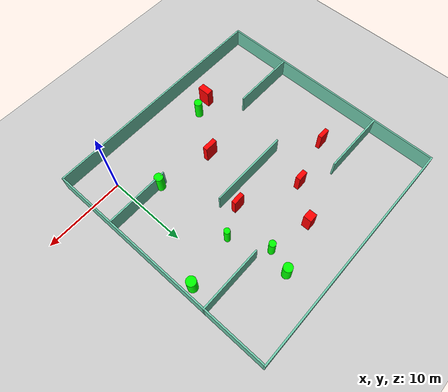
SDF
<sdf version="1.7">
 <world name="default">
  <light name="sun" type="directional">
   <pose>0 0 10 0 -0 0</pose>
   <diffuse>0.8 0.8 0.8 1</diffuse>
   <specular>0.2 0.2 0.2 1</specular>
   <attenuation>
    <range>1000</range>
    <constant>0.9</constant>
    <linear>0.01</linear>
    <quadratic>0.001</quadratic>
   </attenuation>
   <direction>-0.5 0.1 -0.9</direction>
   <spot><inner_angle>0</inner_angle><outer_angle>0</outer_angle><falloff>0</falloff></spot>
  </light>
  <model name="ground_plane">
   <static>1</static>
   <link name="link">
    <collision name="collision">
     <geometry><plane><normal>0 0 1</normal><size>100 100</size></plane></geometry>
     <surface>
      <contact><collide_bitmask>65535</collide_bitmask></contact>
      <friction><ode><mu>100</mu><mu2>50</mu2></ode></friction>
     </surface>
    </collision>
    <visual name="visual">
     <cast_shadows>0</cast_shadows>
     <geometry><plane><normal>0 0 1</normal><size>100 100</size></plane></geometry>
     <material>
      <script><uri>file://media/materials/scripts/gazebo.material</uri><name>Gazebo/Grey</name></script>
     </material>
    </visual>
   </link>
  </model>
  <gravity>0 0 -9.8</gravity>
  <magnetic_field>6e-06 2.3e-05 -4.2e-05</magnetic_field>
  <atmosphere type="adiabatic"/>
  <physics type="ode">
   <max_step_size>0.001</max_step_size>
   <real_time_factor>1</real_time_factor>
   <real_time_update_rate>1000</real_time_update_rate>
  </physics>
  <scene><ambient>0.4 0.4 0.4 1</ambient><background>0.7 0.7 0.7 1</background><shadows>1</shadows></scene>
  <spherical_coordinates>
   <surface_model>EARTH_WGS84</surface_model>
   <latitude_deg>0</latitude_deg>
   <longitude_deg>0</longitude_deg>
   <elevation>0</elevation>
   <heading_deg>0</heading_deg>
  </spherical_coordinates>
  <model name="my_base_walls">
   <link name="Wall_10">
    <collision name="Wall_10_Collision">
     <geometry><box><size>8.2 0.2 2.5</size></box></geometry>
     <pose>0 0 1.25 0 -0 0</pose>
    </collision>
    <visual name="Wall_10_Visual">
     <pose>0 0 1.25 0 -0 0</pose>
     <geometry><box><size>8.2 0.2 2.5</size></box></geometry>
     <material>
      <script><uri>file://media/materials/scripts/gazebo.material</uri><name>Gazebo/Grey</name></script>
      <ambient>0.435294 0.796078 0.67451 1</ambient>
     </material>
     <meta><layer>0</layer></meta>
    </visual>
    <pose>-11 -7 0 0 -0 0</pose>
   </link>
   <link name="Wall_12">
    <collision name="Wall_12_Collision">
     <geometry><box><size>8.2 0.2 2.5</size></box></geometry>
     <pose>0 0 1.25 0 -0 0</pose>
    </collision>
    <visual name="Wall_12_Visual">
     <pose>0 0 1.25 0 -0 0</pose>
     <geometry><box><size>8.2 0.2 2.5</size></box></geometry>
     <material>
      <script><uri>file://media/materials/scripts/gazebo.material</uri><name>Gazebo/Grey</name></script>
      <ambient>0.435294 0.796078 0.67451 1</ambient>
     </material>
     <meta><layer>0</layer></meta>
    </visual>
    <pose>-11 7 0 0 -0 0</pose>
   </link>
   <link name="Wall_14">
    <collision name="Wall_14_Collision">
     <geometry><box><size>8.2 0.2 2.5</size></box></geometry>
     <pose>0 0 1.25 0 -0 0</pose>
    </collision>
    <visual name="Wall_14_Visual">
     <pose>0 0 1.25 0 -0 0</pose>
     <geometry><box><size>8.2 0.2 2.5</size></box></geometry>
     <material>
      <script><uri>file://media/materials/scripts/gazebo.material</uri><name>Gazebo/Grey</name></script>
      <ambient>0.435294 0.796078 0.67451 1</ambient>
     </material>
     <meta><layer>0</layer></meta>
    </visual>
    <pose>11 7 0 0 -0 3.14159</pose>
   </link>
   <link name="Wall_16">
    <collision name="Wall_16_Collision">
     <geometry><box><size>10.2 0.2 2.5</size></box></geometry>
     <pose>0 0 1.25 0 -0 0</pose>
    </collision>
    <visual name="Wall_16_Visual">
     <pose>0 0 1.25 0 -0 0</pose>
     <geometry><box><size>10.2 0.2 2.5</size></box></geometry>
     <material>
      <script><uri>file://media/materials/scripts/gazebo.material</uri><name>Gazebo/Grey</name></script>
      <ambient>0.435294 0.796078 0.67451 1</ambient>
     </material>
     <meta><layer>0</layer></meta>
    </visual>
    <pose>0 0 0 0 -0 3.14159</pose>
   </link>
   <link name="Wall_2">
    <collision name="Wall_2_Collision">
     <geometry><box><size>30.2 0.2 2.5</size></box></geometry>
     <pose>0 0 1.25 0 -0 0</pose>
    </collision>
    <visual name="Wall_2_Visual">
     <pose>0 0 1.25 0 -0 0</pose>
     <geometry><box><size>30.2 0.2 2.5</size></box></geometry>
     <material>
      <script><uri>file://media/materials/scripts/gazebo.material</uri><name>Gazebo/Grey</name></script>
      <ambient>0.435294 0.796078 0.67451 1</ambient>
     </material>
     <meta><layer>0</layer></meta>
    </visual>
    <pose>0 -15 0 0 -0 3.14159</pose>
   </link>
   <link name="Wall_3">
    <collision name="Wall_3_Collision">
     <geometry><box><size>30.2 0.2 2.5</size></box></geometry>
     <pose>0 0 1.25 0 -0 0</pose>
    </collision>
    <visual name="Wall_3_Visual">
     <pose>0 0 1.25 0 -0 0</pose>
     <geometry><box><size>30.2 0.2 2.5</size></box></geometry>
     <material>
      <script><uri>file://media/materials/scripts/gazebo.material</uri><name>Gazebo/Grey</name></script>
      <ambient>0.435294 0.796078 0.67451 1</ambient>
     </material>
     <meta><layer>0</layer></meta>
    </visual>
    <pose>-15 0 0 0 -0 1.5708</pose>
   </link>
   <link name="Wall_4">
    <collision name="Wall_4_Collision">
     <geometry><box><size>30.2 0.2 2.5</size></box></geometry>
     <pose>0 0 1.25 0 -0 0</pose>
    </collision>
    <visual name="Wall_4_Visual">
     <pose>0 0 1.25 0 -0 0</pose>
     <geometry><box><size>30.2 0.2 2.5</size></box></geometry>
     <material>
      <script><uri>file://media/materials/scripts/gazebo.material</uri><name>Gazebo/Grey</name></script>
      <ambient>0.435294 0.796078 0.67451 1</ambient>
     </material>
     <meta><layer>0</layer></meta>
    </visual>
    <pose>0 15 0 0 -0 0</pose>
   </link>
   <link name="Wall_6">
    <collision name="Wall_6_Collision">
     <geometry><box><size>30.2 0.2 2.5</size></box></geometry>
     <pose>0 0 1.25 0 -0 0</pose>
    </collision>
    <visual name="Wall_6_Visual">
     <pose>0 0 1.25 0 -0 0</pose>
     <geometry><box><size>30.2 0.2 2.5</size></box></geometry>
     <material>
      <script><uri>file://media/materials/scripts/gazebo.material</uri><name>Gazebo/Grey</name></script>
      <ambient>0.435294 0.796078 0.67451 1</ambient>
     </material>
     <meta><layer>0</layer></meta>
    </visual>
    <pose>15 0 0 0 -0 1.5708</pose>
   </link>
   <link name="Wall_8">
    <collision name="Wall_8_Collision">
     <geometry><box><size>8.2 0.2 2.5</size></box></geometry>
     <pose>0 0 1.25 0 -0 0</pose>
    </collision>
    <visual name="Wall_8_Visual">
     <pose>0 0 1.25 0 -0 0</pose>
     <geometry><box><size>8.2 0.2 2.5</size></box></geometry>
     <material>
      <script><uri>file://media/materials/scripts/gazebo.material</uri><name>Gazebo/Grey</name></script>
      <ambient>0.435294 0.796078 0.67451 1</ambient>
     </material>
     <meta><layer>0</layer></meta>
    </visual>
    <pose>11 -7 0 0 -0 3.14159</pose>
   </link>
   <static>1</static>
   <pose>-11 11 0 0 -0 0</pose>
  </model>
  <model name="cylinder1">
   <static>1</static>
   <link name="link">
    <inertial>
     <mass>1</mass>
     <inertia><ixx>0.5</ixx><ixy>0</ixy><ixz>0</ixz><iyy>0.5</iyy><iyz>0</iyz><izz>1</izz></inertia>
    </inertial>
    <collision name="collision">
     <geometry><cylinder><radius>0.4120764459618786</radius><length>2.5</length></cylinder></geometry>
    </collision>
    <visual name="visual">
     <geometry><cylinder><radius>0.4120764459618786</radius><length>2.5</length></cylinder></geometry>
     <material>
      <ambient>0 1 0 1</ambient>
      <diffuse>0 1 0 1</diffuse>
      <specular>0.1 0.1 0.1 1</specular>
      <emissive>0 0 0 0</emissive>
     </material>
    </visual>
   </link>
   <pose>-5.770448203655578 18.801620406633784 1.25 0 0 0</pose>
  </model>
  <model name="cylinder2">
   <static>1</static>
   <link name="link">
    <inertial>
     <mass>1</mass>
     <inertia><ixx>0.5</ixx><ixy>0</ixy><ixz>0</ixz><iyy>0.5</iyy><iyz>0</iyz><izz>1</izz></inertia>
    </inertial>
    <collision name="collision">
     <geometry><cylinder><radius>0.37089732822670957</radius><length>2.5</length></cylinder></geometry>
    </collision>
    <visual name="visual">
     <geometry><cylinder><radius>0.37089732822670957</radius><length>2.5</length></cylinder></geometry>
     <material>
      <ambient>0 1 0 1</ambient>
      <diffuse>0 1 0 1</diffuse>
      <specular>0.1 0.1 0.1 1</specular>
      <emissive>0 0 0 0</emissive>
     </material>
    </visual>
   </link>
   <pose>-3.625179626922133 14.220956682888147 1.25 0 0 0</pose>
  </model>
  <model name="cylinder3">
   <static>1</static>
   <link name="link">
    <inertial>
     <mass>1</mass>
     <inertia><ixx>0.5</ixx><ixy>0</ixy><ixz>0</ixz><iyy>0.5</iyy><iyz>0</iyz><izz>1</izz></inertia>
    </inertial>
    <collision name="collision">
     <geometry><cylinder><radius>0.5977308956573537</radius><length>2.5</length></cylinder></geometry>
    </collision>
    <visual name="visual">
     <geometry><cylinder><radius>0.5977308956573537</radius><length>2.5</length></cylinder></geometry>
     <material>
      <ambient>0 1 0 1</ambient>
      <diffuse>0 1 0 1</diffuse>
      <specular>0.1 0.1 0.1 1</specular>
      <emissive>0 0 0 0</emissive>
     </material>
    </visual>
   </link>
   <pose>2.8547750180134734 15.147722570758273 1.25 0 0 0</pose>
  </model>
  <model name="cylinder4">
   <static>1</static>
   <link name="link">
    <inertial>
     <mass>1</mass>
     <inertia><ixx>0.5</ixx><ixy>0</ixy><ixz>0</ixz><iyy>0.5</iyy><iyz>0</iyz><izz>1</izz></inertia>
    </inertial>
    <collision name="collision">
     <geometry><cylinder><radius>0.5613574613672001</radius><length>2.5</length></cylinder></geometry>
    </collision>
    <visual name="visual">
     <geometry><cylinder><radius>0.5613574613672001</radius><length>2.5</length></cylinder></geometry>
     <material>
      <ambient>0 1 0 1</ambient>
      <diffuse>0 1 0 1</diffuse>
      <specular>0.1 0.1 0.1 1</specular>
      <emissive>0 0 0 0</emissive>
     </material>
    </visual>
   </link>
   <pose>-4.837714437983845 21.670955459917504 1.25 0 0 0</pose>
  </model>
  <model name="cylinder5">
   <static>1</static>
   <link name="link">
    <inertial>
     <mass>1</mass>
     <inertia><ixx>0.5</ixx><ixy>0</ixy><ixz>0</ixz><iyy>0.5</iyy><iyz>0</iyz><izz>1</izz></inertia>
    </inertial>
    <collision name="collision">
     <geometry><cylinder><radius>0.48860779078012806</radius><length>2.5</length></cylinder></geometry>
    </collision>
    <visual name="visual">
     <geometry><cylinder><radius>0.48860779078012806</radius><length>2.5</length></cylinder></geometry>
     <material>
      <ambient>0 1 0 1</ambient>
      <diffuse>0 1 0 1</diffuse>
      <specular>0.1 0.1 0.1 1</specular>
      <emissive>0 0 0 0</emissive>
     </material>
    </visual>
   </link>
   <pose>-13.78955581516637 0.19395802426580566 1.25 0 0 0</pose>
  </model>
  <model name="cylinder6">
   <static>1</static>
   <link name="link">
    <inertial>
     <mass>1</mass>
     <inertia><ixx>0.5</ixx><ixy>0</ixy><ixz>0</ixz><iyy>0.5</iyy><iyz>0</iyz><izz>1</izz></inertia>
    </inertial>
    <collision name="collision">
     <geometry><cylinder><radius>0.5423972391835766</radius><length>2.5</length></cylinder></geometry>
    </collision>
    <visual name="visual">
     <geometry><cylinder><radius>0.5423972391835766</radius><length>2.5</length></cylinder></geometry>
     <material>
      <ambient>0 1 0 1</ambient>
      <diffuse>0 1 0 1</diffuse>
      <specular>0.1 0.1 0.1 1</specular>
      <emissive>0 0 0 0</emissive>
     </material>
    </visual>
   </link>
   <pose>-3.288910243191925 4.0177550256674435 1.25 0 0 0</pose>
  </model>
  <model name="box1">
   <static>1</static>
   <link name="link">
    <inertial>
     <mass>1</mass>
     <inertia><ixx>0.083</ixx><ixy>0</ixy><ixz>0</ixz><iyy>0.083</iyy><iyz>0</iyz><izz>0.083</izz></inertia>
    </inertial>
    <collision name="collision">
     <geometry><box><size>1.6889780220210326 0.5894927699273581 2.5</size></box></geometry>
    </collision>
    <visual name="visual">
     <geometry><box><size>1.6889780220210326 0.5894927699273581 2.5</size></box></geometry>
     <material>
      <ambient>1 0 0 1</ambient>
      <diffuse>1 0 0 1</diffuse>
      <specular>0.1 0.1 0.1 1</specular>
      <emissive>0 0 0 0</emissive>
     </material>
    </visual>
    <sensor name="my_contact" type="contact">
     <contact><collision>box_collision</collision><topic>__default_topic__</topic></contact>
    </sensor>
   </link>
   <pose>-10.333669772131687 5.422539348685447 1.25 0 0 0</pose>
  </model>
  <model name="box2">
   <static>1</static>
   <link name="link">
    <inertial>
     <mass>1</mass>
     <inertia><ixx>0.083</ixx><ixy>0</ixy><ixz>0</ixz><iyy>0.083</iyy><iyz>0</iyz><izz>0.083</izz></inertia>
    </inertial>
    <collision name="collision">
     <geometry><box><size>0.8519325743720243 1.5745569343001777 2.5</size></box></geometry>
    </collision>
    <visual name="visual">
     <geometry><box><size>0.8519325743720243 1.5745569343001777 2.5</size></box></geometry>
     <material>
      <ambient>1 0 0 1</ambient>
      <diffuse>1 0 0 1</diffuse>
      <specular>0.1 0.1 0.1 1</specular>
      <emissive>0 0 0 0</emissive>
     </material>
    </visual>
    <sensor name="my_contact" type="contact">
     <contact><collision>box_collision</collision><topic>__default_topic__</topic></contact>
    </sensor>
   </link>
   <pose>-15.893331120220063 -0.5266318767992795 1.25 0 0 0</pose>
  </model>
  <model name="box3">
   <static>1</static>
   <link name="link">
    <inertial>
     <mass>1</mass>
     <inertia><ixx>0.083</ixx><ixy>0</ixy><ixz>0</ixz><iyy>0.083</iyy><iyz>0</iyz><izz>0.083</izz></inertia>
    </inertial>
    <collision name="collision">
     <geometry><box><size>1.317978201678438 0.6186098861251617 2.5</size></box></geometry>
    </collision>
    <visual name="visual">
     <geometry><box><size>1.317978201678438 0.6186098861251617 2.5</size></box></geometry>
     <material>
      <ambient>1 0 0 1</ambient>
      <diffuse>1 0 0 1</diffuse>
      <specular>0.1 0.1 0.1 1</specular>
      <emissive>0 0 0 0</emissive>
     </material>
    </visual>
    <sensor name="my_contact" type="contact">
     <contact><collision>box_collision</collision><topic>__default_topic__</topic></contact>
    </sensor>
   </link>
   <pose>-14.280270361185018 16.035865502184855 1.25 0 0 0</pose>
  </model>
  <model name="box4">
   <static>1</static>
   <link name="link">
    <inertial>
     <mass>1</mass>
     <inertia><ixx>0.083</ixx><ixy>0</ixy><ixz>0</ixz><iyy>0.083</iyy><iyz>0</iyz><izz>0.083</izz></inertia>
    </inertial>
    <collision name="collision">
     <geometry><box><size>1.4774142476118375 0.5357244161763605 2.5</size></box></geometry>
    </collision>
    <visual name="visual">
     <geometry><box><size>1.4774142476118375 0.5357244161763605 2.5</size></box></geometry>
     <material>
      <ambient>1 0 0 1</ambient>
      <diffuse>1 0 0 1</diffuse>
      <specular>0.1 0.1 0.1 1</specular>
      <emissive>0 0 0 0</emissive>
     </material>
    </visual>
    <sensor name="my_contact" type="contact">
     <contact><collision>box_collision</collision><topic>__default_topic__</topic></contact>
    </sensor>
   </link>
   <pose>-7.286953607892929 12.537796148565189 1.25 0 0 0</pose>
  </model>
  <model name="box5">
   <static>1</static>
   <link name="link">
    <inertial>
     <mass>1</mass>
     <inertia><ixx>0.083</ixx><ixy>0</ixy><ixz>0</ixz><iyy>0.083</iyy><iyz>0</iyz><izz>0.083</izz></inertia>
    </inertial>
    <collision name="collision">
     <geometry><box><size>1.4211416234044054 0.5302322341826438 2.5</size></box></geometry>
    </collision>
    <visual name="visual">
     <geometry><box><size>1.4211416234044054 0.5302322341826438 2.5</size></box></geometry>
     <material>
      <ambient>1 0 0 1</ambient>
      <diffuse>1 0 0 1</diffuse>
      <specular>0.1 0.1 0.1 1</specular>
      <emissive>0 0 0 0</emissive>
     </material>
    </visual>
    <sensor name="my_contact" type="contact">
     <contact><collision>box_collision</collision><topic>__default_topic__</topic></contact>
    </sensor>
   </link>
   <pose>-20.463514383532974 14.527561507723298 1.25 0 0 0</pose>
  </model>
  <model name="box6">
   <static>1</static>
   <link name="link">
    <inertial>
     <mass>1</mass>
     <inertia><ixx>0.083</ixx><ixy>0</ixy><ixz>0</ixz><iyy>0.083</iyy><iyz>0</iyz><izz>0.083</izz></inertia>
    </inertial>
    <collision name="collision">
     <geometry><box><size>1.091044263642201 1.0088537852947246 2.5</size></box></geometry>
    </collision>
    <visual name="visual">
     <geometry><box><size>1.091044263642201 1.0088537852947246 2.5</size></box></geometry>
     <material>
      <ambient>1 0 0 1</ambient>
      <diffuse>1 0 0 1</diffuse>
      <specular>0.1 0.1 0.1 1</specular>
      <emissive>0 0 0 0</emissive>
     </material>
    </visual>
    <sensor name="my_contact" type="contact">
     <contact><collision>box_collision</collision><topic>__default_topic__</topic></contact>
    </sensor>
   </link>
   <pose>-10.9531807467813 19.86225836574012 1.25 0 0 0</pose>
  </model>
 </world>
</sdf>
